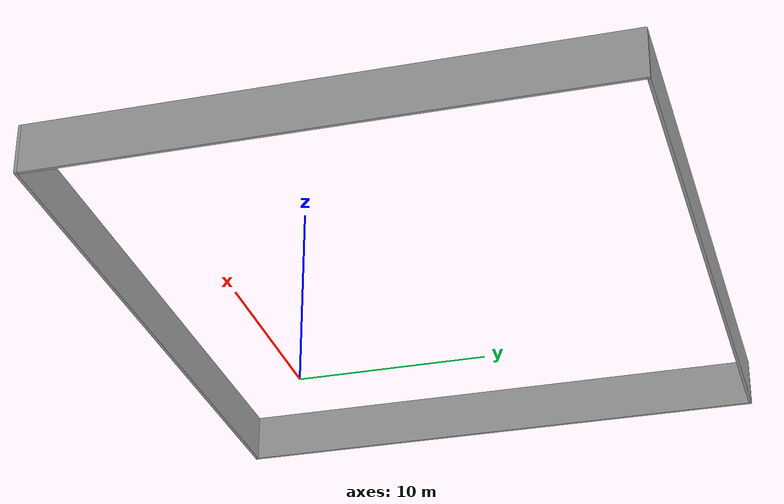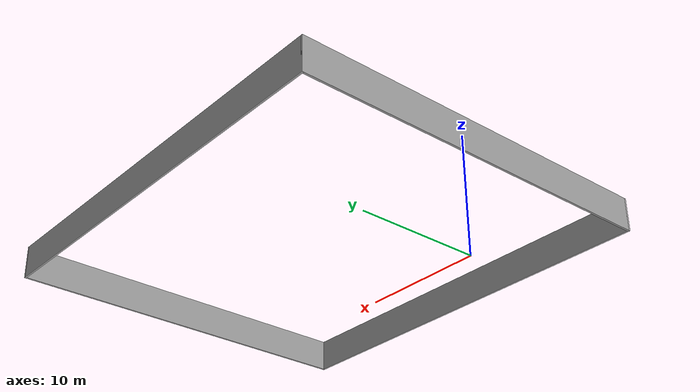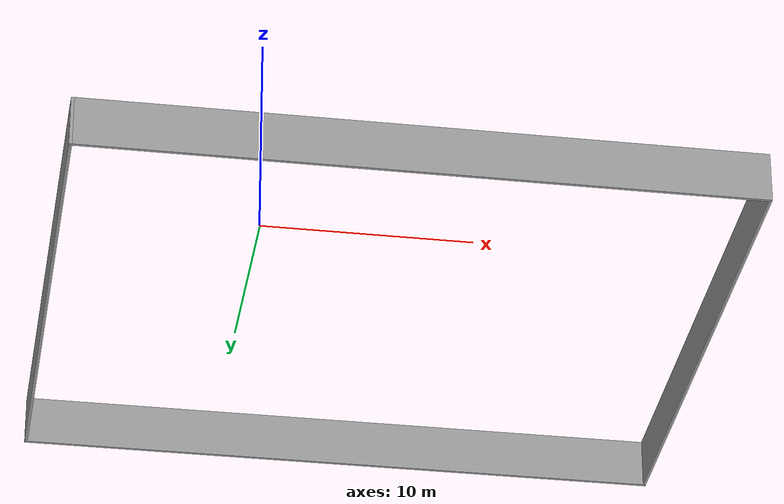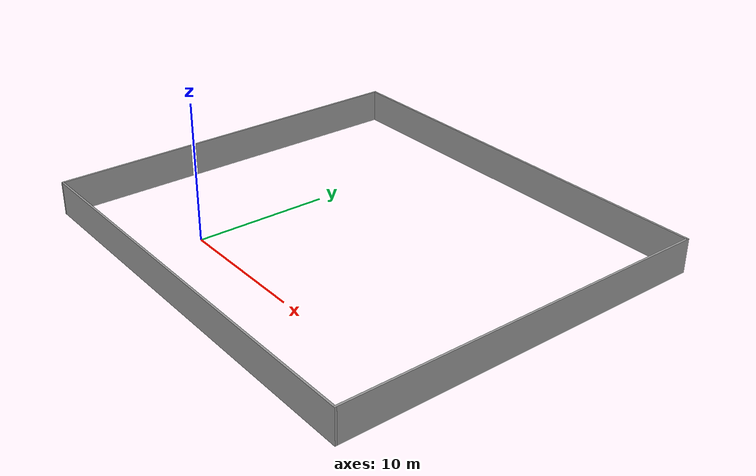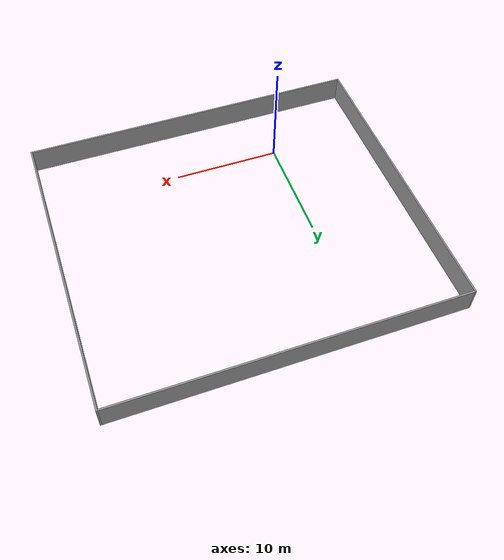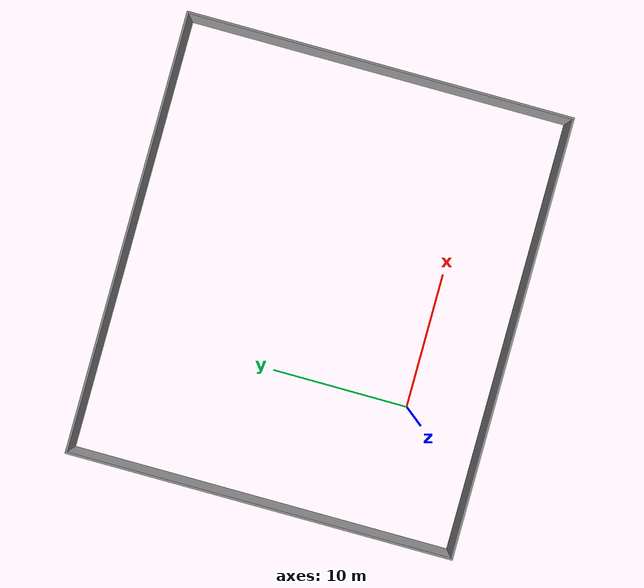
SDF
<?xml version='1.0'?>
<sdf version='1.7'>
  <model name='obstacles.world'>
    <pose>6.82651 8.44225 0 0 -0 0</pose>
    <link name='Wall_0'>
      <collision name='Wall_0_Collision'>
        <geometry>
          <box>
            <size>28.25 0.15 2.5</size>
          </box>
        </geometry>
        <pose>0 0 1.25 0 -0 0</pose>
      </collision>
      <visual name='Wall_0_Visual'>
        <pose>0 0 1.25 0 -0 0</pose>
        <geometry>
          <box>
            <size>28.25 0.15 2.5</size>
          </box>
        </geometry>
        <material>
          <script>
            <uri>file://media/materials/scripts/gazebo.material</uri>
            <name>Gazebo/Grey</name>
          </script>
          <ambient>1 1 1 1</ambient>
        </material>
        <meta>
          <layer>0</layer>
        </meta>
      </visual>
      <pose>-16.05 0 0 0 -0 1.5708</pose>
    </link>
    <link name='Wall_1'>
      <collision name='Wall_1_Collision'>
        <geometry>
          <box>
            <size>32.25 0.15 2.5</size>
          </box>
        </geometry>
        <pose>0 0 1.25 0 -0 0</pose>
      </collision>
      <visual name='Wall_1_Visual'>
        <pose>0 0 1.25 0 -0 0</pose>
        <geometry>
          <box>
            <size>32.25 0.15 2.5</size>
          </box>
        </geometry>
        <material>
          <script>
            <uri>file://media/materials/scripts/gazebo.material</uri>
            <name>Gazebo/Grey</name>
          </script>
          <ambient>1 1 1 1</ambient>
        </material>
        <meta>
          <layer>0</layer>
        </meta>
      </visual>
      <pose>1e-06 14.05 0 0 -0 0</pose>
    </link>
    <link name='Wall_4'>
      <collision name='Wall_4_Collision'>
        <geometry>
          <box>
            <size>28.25 0.15 2.5</size>
          </box>
        </geometry>
        <pose>0 0 1.25 0 -0 0</pose>
      </collision>
      <visual name='Wall_4_Visual'>
        <pose>0 0 1.25 0 -0 0</pose>
        <geometry>
          <box>
            <size>28.25 0.15 2.5</size>
          </box>
        </geometry>
        <material>
          <script>
            <uri>file://media/materials/scripts/gazebo.material</uri>
            <name>Gazebo/Grey</name>
          </script>
          <ambient>1 1 1 1</ambient>
        </material>
        <meta>
          <layer>0</layer>
        </meta>
      </visual>
      <pose>16.05 0 0 0 -0 -1.5708</pose>
    </link>
    <link name='Wall_5'>
      <collision name='Wall_5_Collision'>
        <geometry>
          <box>
            <size>32.25 0.15 2.5</size>
          </box>
        </geometry>
        <pose>0 0 1.25 0 -0 0</pose>
      </collision>
      <visual name='Wall_5_Visual'>
        <pose>0 0 1.25 0 -0 0</pose>
        <geometry>
          <box>
            <size>32.25 0.15 2.5</size>
          </box>
        </geometry>
        <material>
          <script>
            <uri>file://media/materials/scripts/gazebo.material</uri>
            <name>Gazebo/Grey</name>
          </script>
          <ambient>1 1 1 1</ambient>
        </material>
        <meta>
          <layer>0</layer>
        </meta>
      </visual>
      <pose>1e-06 -14.05 0 0 -0 3.14159</pose>
    </link>
    <static>1</static>
  </model>
</sdf>
